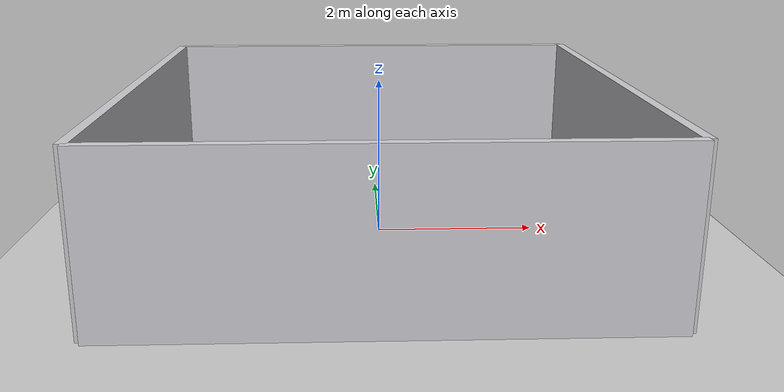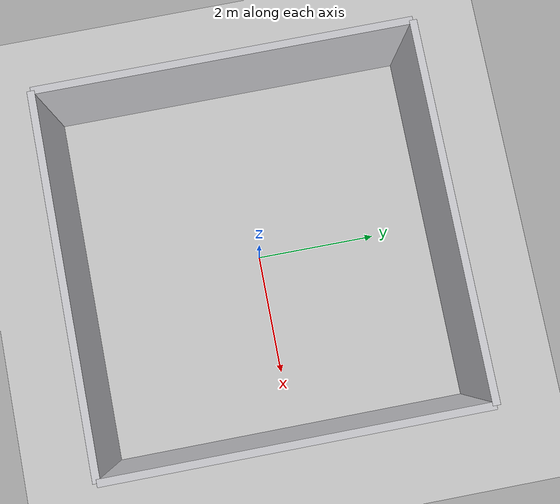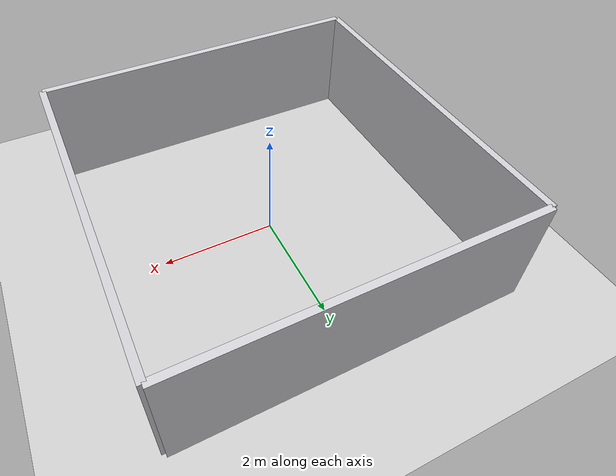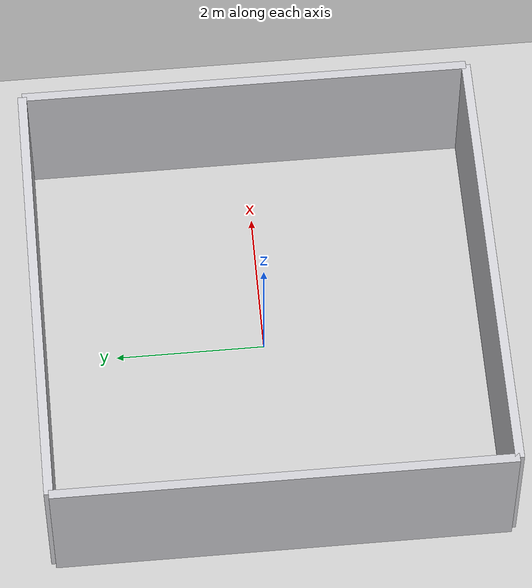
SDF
<?xml version="1.0" ?>
<sdf version="1.6">
  <world name="minimal_walls">
    <include>
      <uri>model://sun</uri>
    </include>
    <include>
      <uri>model://ground_plane</uri>
    </include>

    <physics type="ode">
      <real_time_update_rate>1000.0</real_time_update_rate>
      <max_step_size>0.001</max_step_size>
      <real_time_factor>1.0</real_time_factor>
    </physics>

    <scene>
      <ambient>0.45 0.45 0.45 1</ambient>
      <background>0.7 0.7 0.7 1</background>
      <shadows>false</shadows>
    </scene>

    <model name="room_shell">
      <static>true</static>
      <pose>0 0 0 0 0 0</pose>

      <link name="south_wall">
        <pose>0 -3 1 0 0 0</pose>
        <collision name="collision">
          <geometry>
            <box>
              <size>6 0.12 2</size>
            </box>
          </geometry>
        </collision>
        <visual name="visual">
          <geometry>
            <box>
              <size>6 0.12 2</size>
            </box>
          </geometry>
          <material>
            <ambient>0.82 0.82 0.84 1</ambient>
            <diffuse>0.82 0.82 0.84 1</diffuse>
          </material>
        </visual>
      </link>

      <link name="north_wall">
        <pose>0 3 1 0 0 0</pose>
        <collision name="collision">
          <geometry>
            <box>
              <size>6 0.12 2</size>
            </box>
          </geometry>
        </collision>
        <visual name="visual">
          <geometry>
            <box>
              <size>6 0.12 2</size>
            </box>
          </geometry>
          <material>
            <ambient>0.82 0.82 0.84 1</ambient>
            <diffuse>0.82 0.82 0.84 1</diffuse>
          </material>
        </visual>
      </link>

      <link name="west_wall">
        <pose>-3 0 1 0 0 0</pose>
        <collision name="collision">
          <geometry>
            <box>
              <size>0.12 6 2</size>
            </box>
          </geometry>
        </collision>
        <visual name="visual">
          <geometry>
            <box>
              <size>0.12 6 2</size>
            </box>
          </geometry>
          <material>
            <ambient>0.8 0.8 0.82 1</ambient>
            <diffuse>0.8 0.8 0.82 1</diffuse>
          </material>
        </visual>
      </link>

      <link name="east_wall">
        <pose>3 0 1 0 0 0</pose>
        <collision name="collision">
          <geometry>
            <box>
              <size>0.12 6 2</size>
            </box>
          </geometry>
        </collision>
        <visual name="visual">
          <geometry>
            <box>
              <size>0.12 6 2</size>
            </box>
          </geometry>
          <material>
            <ambient>0.8 0.8 0.82 1</ambient>
            <diffuse>0.8 0.8 0.82 1</diffuse>
          </material>
        </visual>
      </link>
    </model>
  </world>
</sdf>
